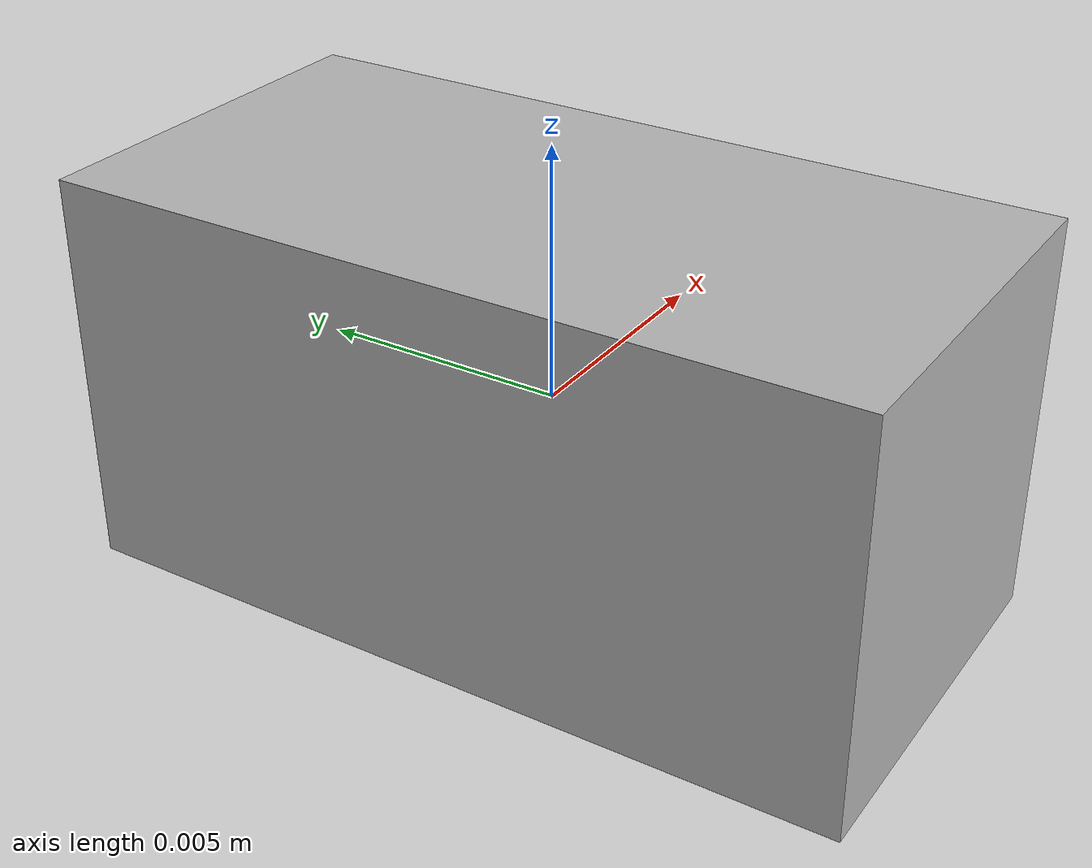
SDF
<?xml version='1.0'?>
<sdf version='1.6'>
		<model name="LR_IR">
			<self_collide>true</self_collide>
			<pose>0.0 0.0 0.0 0.0 0.0 0.0</pose>
			<!-- Start of parts of the pmodel LR_IR -->
			<!-- End of parts of the pmodel LR_IR -->

			<!-- Start of links of the pmodel LR_IR -->
			<!-- link full name is LR_IR::BBody -->
			<link name="1-BBody">
					<pose>0.0 0.0 0.0 0.0 0.0 0.0</pose>
					<inertial>
						<pose>0.0 0.0 0.0 0.0 0.0 0.0</pose>
						<inertia>
							<ixx>1.0</ixx>
							<ixy>0.0</ixy>
							<ixz>0.0</ixz>
							<iyy>1.0</iyy>
							<iyz>0.0</iyz>
							<izz>1.0</izz>
						</inertia>
						<mass>0.0010000000474974513</mass>
					</inertial>
					<!-- body full name is LR_IR::BBody::Box -->
					<collision name="1--Box">
						<laser_retro>0.0</laser_retro>
						<pose>0.0 0.0 0.0 0.0 0.0 0.0</pose>
						<geometry>
							<box>
								<size>0.00800000037997961 0.01600000075995922 0.00800000037997961</size>
							</box>
						</geometry>
						<surface>
							<bounce>
								<restitution_coefficient>0.0</restitution_coefficient>
								<threshold>100000.0</threshold>
							</bounce>
							<friction>
								<ode>
									<mu>1.0</mu>
									<mu2>1.0</mu2>
									<fdir1>0.0 0.0 0.0</fdir1>
									<slip1>0.0</slip1>
									<slip2>0.0</slip2>
								</ode>
								<torsional>
									<coefficient>1.0</coefficient>
									<surface_radius>0.0</surface_radius>
								</torsional>
							</friction>
						</surface>
					</collision>
					<visual name="1--Box">
						<laser_retro>0.0</laser_retro>
						<pose>0.0 0.0 0.0 0.0 0.0 0.0</pose>
						<geometry>
							<box>
								<size>0.00800000037997961 0.01600000075995922 0.00800000037997961</size>
							</box>
						</geometry>
						<surface>
							<bounce>
								<restitution_coefficient>0.0</restitution_coefficient>
								<threshold>100000.0</threshold>
							</bounce>
							<friction>
								<ode>
									<mu>1.0</mu>
									<mu2>1.0</mu2>
									<fdir1>0.0 0.0 0.0</fdir1>
									<slip1>0.0</slip1>
									<slip2>0.0</slip2>
								</ode>
								<torsional>
									<coefficient>1.0</coefficient>
									<surface_radius>0.0</surface_radius>
								</torsional>
							</friction>
						</surface>
					</visual>
					<!-- WARNING: The SDF generator relies on annotations of the sensor IRSensor to specify aspects of the
					sensor that are accounted for in the equations. -->
					<!-- sensor simple name is IRSensor -->
					<sensor name="IRSensor" type="ray">
						<pose>0.004000000189989805 -0.004000000189989805 0.0 -0.0 1.57079632679 0.0</pose>
						<visualize>true</visualize>
						<always_on>true</always_on>
						<update_rate>1</update_rate>
						<ray>
							<scan>
								<horizontal>
									<samples>1</samples>
									<resolution>1.0</resolution>
								</horizontal>
								<vertical>
									<samples>1</samples>
									<resolution>1.0</resolution>
								</vertical>
							</scan>
							<range>
								<min>0.0</min>
								<max>0.10000000149011612</max>
							</range>
						</ray>
					</sensor>
			</link>
			<!-- End of links of the pmodel LR_IR -->

			<!-- Start of joints of the pmodel LR_IR -->
			<!-- End of joints of the pmodel LR_IR -->

			<!-- Start of fixed connections of the pmodel LR_IR -->
			<!-- End of fixed connections of the pmodel LR_IR -->
		</model>
</sdf>
